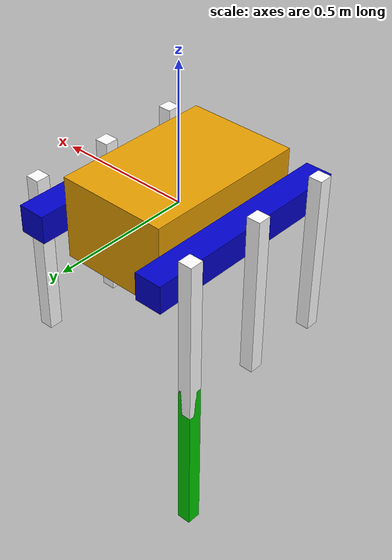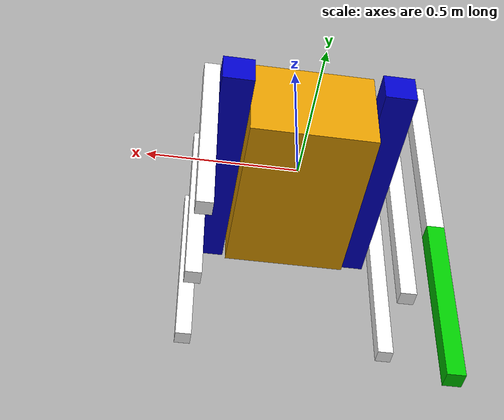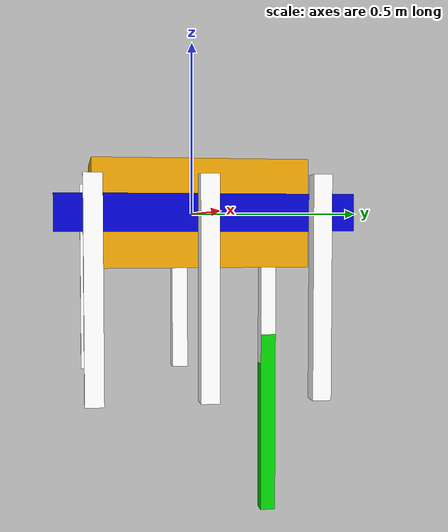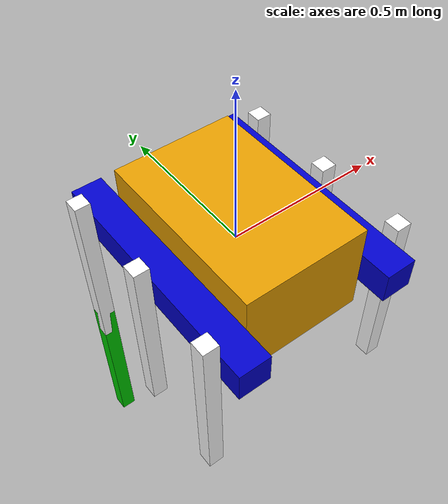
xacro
<?xml version="1.0"?>
<robot name="roscontrol" xmlns:xacro="http://ros.org/wiki/xacro">

    <xacro:property name="BASE_X" value="0.4"/>
    <xacro:property name="BASE_Y" value="0.6"/>
    <xacro:property name="BASE_Z" value="0.3"/>

    <xacro:property name="RIGHT_BASE_X" value="0.1"/>
    <xacro:property name="RIGHT_BASE_Y" value="0.8"/>
    <xacro:property name="RIGHT_BASE_Z" value="0.1"/>

    <xacro:property name="LEFT_BASE_X" value="0.1"/>
    <xacro:property name="LEFT_BASE_Y" value="0.8"/>
    <xacro:property name="LEFT_BASE_Z" value="0.1"/>

    <xacro:property name="LEFT_BASE_LEG_1_X" value="0.05"/>
    <xacro:property name="LEFT_BASE_LEG_1_Y" value="0.05"/>
    <xacro:property name="LEFT_BASE_LEG_1_Z" value="0.6"/>

    <xacro:property name="LEFT_BASE_LEG_2_X" value="0.05"/>
    <xacro:property name="LEFT_BASE_LEG_2_Y" value="0.05"/>
    <xacro:property name="LEFT_BASE_LEG_2_Z" value="0.6"/>

    <xacro:property name="LEFT_BASE_LEG_3_X" value="0.05"/>
    <xacro:property name="LEFT_BASE_LEG_3_Y" value="0.05"/>
    <xacro:property name="LEFT_BASE_LEG_3_Z" value="0.6"/>

    <xacro:property name="RIGHT_BASE_LEG_1_X" value="0.05"/>
    <xacro:property name="RIGHT_BASE_LEG_1_Y" value="0.05"/>
    <xacro:property name="RIGHT_BASE_LEG_1_Z" value="0.6"/>

    <xacro:property name="RIGHT_BASE_LEG_2_X" value="0.05"/>
    <xacro:property name="RIGHT_BASE_LEG_2_Y" value="0.05"/>
    <xacro:property name="RIGHT_BASE_LEG_2_Z" value="0.6"/>

    <xacro:property name="RIGHT_BASE_LEG_3_X" value="0.05"/>
    <xacro:property name="RIGHT_BASE_LEG_3_Y" value="0.05"/>
    <xacro:property name="RIGHT_BASE_LEG_3_Z" value="0.6"/>

    <material name="blue">
        <color rgba="0 0 0.8 1"/>
    </material>

    <material name="uncolor">
        <color rgba="0 0.8 0 1"/>
    </material>

    <material name="white">
        <color rgba="1 1 1 1"/>
    </material>

    <link name="base_link">
        <visual>
            <geometry>
                <box size="${BASE_X} ${BASE_Y} ${BASE_Z}"/>
            </geometry>
        </visual>
    </link>

    <link name="right_base_link">
        <visual>
            <geometry>
                <box size="${RIGHT_BASE_X} ${RIGHT_BASE_Y} ${RIGHT_BASE_Z}"/>
            </geometry>
            <material name="blue"/>
        </visual>
    </link>

    <joint name="right_base_joint" type="continuous">
        <parent link="base_link"/>
        <child  link="right_base_link"/>
        <origin rpy="0 0 0" xyz="${BASE_X / 2 + RIGHT_BASE_X / 2} 0 0"/>
    </joint>

    <link name="left_base_link">
        <visual>
            <geometry>
                <box size="${LEFT_BASE_X} ${LEFT_BASE_Y} ${LEFT_BASE_Z}"/>
            </geometry>
            <material name="blue"/>
        </visual>
    </link>

    <joint name="left_base_joint" type="continuous">
        <parent link="base_link"/>
        <child  link="left_base_link"/>
        <origin rpy="0 0 0" xyz="-${BASE_X / 2 + LEFT_BASE_X / 2} 0 0"/>
    </joint>

    <link name="left_base_leg_1_link">
        <visual>
            <geometry>
                <box size="${LEFT_BASE_LEG_1_X} ${LEFT_BASE_LEG_1_Y} ${LEFT_BASE_LEG_1_Z}"/>
            </geometry>
            <material name="white"/>
            <origin rpy="0 0 0" xyz="-${LEFT_BASE_X / 2 + LEFT_BASE_LEG_1_X / 2} 0 -0.2"/>
        </visual>
    </link>

    <joint name="left_base_leg_1_joint" type="continuous">
        <parent link="left_base_link"/>
        <child  link="left_base_leg_1_link"/>
        <origin rpy="0 0 0" xyz="0 0.3 0"/>
    </joint>

    <link name="left_leg_1_bottom_link">
        <visual>
            <geometry>
                <box size="${LEFT_BASE_LEG_1_X} ${LEFT_BASE_LEG_1_Y} ${LEFT_BASE_LEG_1_Z}"/>
            </geometry>
            <material name="uncolor"/>
            <origin rpy="0 0 0" xyz="-${LEFT_BASE_X / 2 + LEFT_BASE_LEG_1_X / 2} 0 -0.2"/>
        </visual>
    </link>

    <joint name="left_leg_1_bottom_joint" type="continuous">
        <parent link="left_base_leg_1_link"/>
        <child  link="left_leg_1_bottom_link"/>
        <origin rpy="0 0 0" xyz="0 0 -0.5"/>
    </joint>

    <link name="left_base_leg_2_link">
        <visual>
            <geometry>
                <box size="${LEFT_BASE_LEG_2_X} ${LEFT_BASE_LEG_2_Y} ${LEFT_BASE_LEG_2_Z}"/>
            </geometry>
            <material name="white"/>
            <origin rpy="0 0 0" xyz="-${LEFT_BASE_X / 2 + LEFT_BASE_LEG_2_X / 2} 0 -0.2"/>
        </visual>
    </link>

    <joint name="left_base_leg_2_joint" type="continuous">
        <parent link="left_base_link"/>
        <child  link="left_base_leg_2_link"/>
        <origin rpy="0 0 0" xyz="0 0 0"/>
    </joint>

    <link name="left_base_leg_3_link">
        <visual>
            <geometry>
                <box size="${LEFT_BASE_LEG_3_X} ${LEFT_BASE_LEG_3_Y} ${LEFT_BASE_LEG_3_Z}"/>
            </geometry>
            <material name="white"/>
            <origin rpy="0 0 0" xyz="-${LEFT_BASE_X / 2 + LEFT_BASE_LEG_3_X / 2} 0 -0.2"/>
        </visual>
    </link>

    <joint name="left_base_leg_3_joint" type="continuous">
        <parent link="left_base_link"/>
        <child  link="left_base_leg_3_link"/>
        <origin rpy="0 0 0" xyz="0 -0.3 0"/>
    </joint>

    <link name="right_base_leg_1_link">
        <visual>
            <geometry>
                <box size="${RIGHT_BASE_LEG_1_X} ${RIGHT_BASE_LEG_1_Y} ${RIGHT_BASE_LEG_1_Z}"/>
            </geometry>
            <material name="white"/>
            <origin rpy="0 0 0" xyz="${RIGHT_BASE_X / 2 + RIGHT_BASE_LEG_1_X / 2} 0 -0.2"/>
        </visual>
    </link>

    <joint name="right_base_leg_1_joint" type="continuous">
        <parent link="right_base_link"/>
        <child  link="right_base_leg_1_link"/>
        <origin rpy="0 0 0" xyz="0 0.3 0"/>
    </joint>

    <link name="right_base_leg_2_link">
        <visual>
            <geometry>
                <box size="${RIGHT_BASE_LEG_2_X} ${RIGHT_BASE_LEG_2_Y} ${RIGHT_BASE_LEG_2_Z}"/>
            </geometry>
            <material name="white"/>
            <origin rpy="0 0 0" xyz="${RIGHT_BASE_X / 2 + RIGHT_BASE_LEG_2_X / 2} 0 -0.2"/>
        </visual>
    </link>

    <joint name="right_base_leg_2_joint" type="continuous">
        <parent link="right_base_link"/>
        <child  link="right_base_leg_2_link"/>
        <origin rpy="0 0 0" xyz="0 0 0"/>
    </joint>

    <link name="right_base_leg_3_link">
        <visual>
            <geometry>
                <box size="${RIGHT_BASE_LEG_3_X} ${RIGHT_BASE_LEG_3_Y} ${RIGHT_BASE_LEG_3_Z}"/>
            </geometry>
            <material name="white"/>
            <origin rpy="0 0 0" xyz="${RIGHT_BASE_X / 2 + RIGHT_BASE_LEG_3_X / 2} 0 -0.2"/>
        </visual>
    </link>

    <joint name="right_base_leg_3_joint" type="continuous">
        <parent link="right_base_link"/>
        <child  link="right_base_leg_3_link"/>
        <origin rpy="0 0 0" xyz="0 -0.3 0"/>
    </joint>
</robot>
